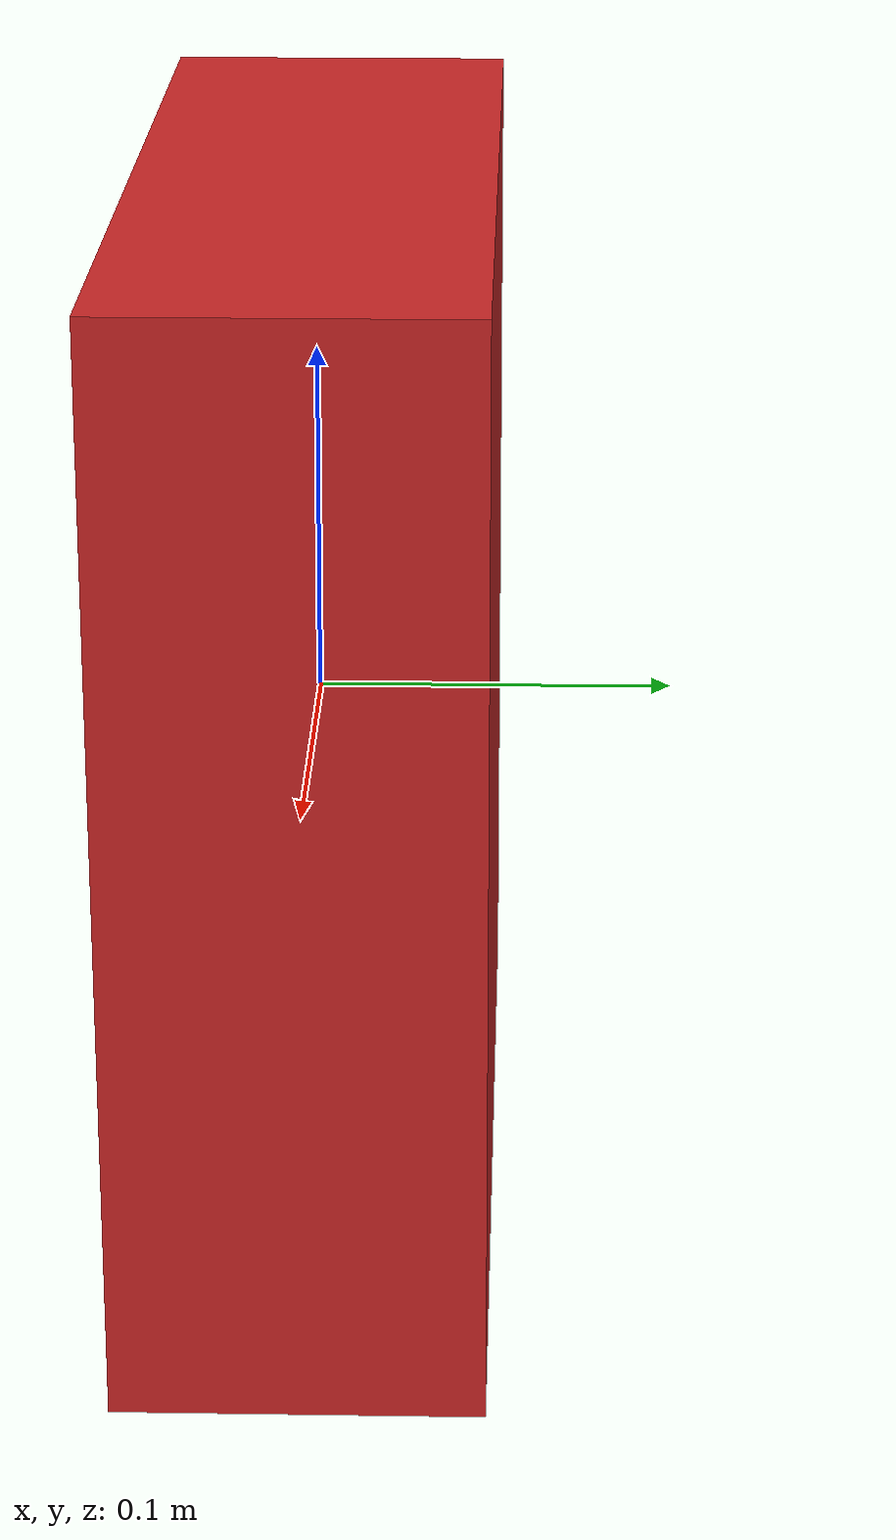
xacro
<?xml version="1.0"?>
<robot name="block"  xmlns:xacro="http://www.ros.org/wiki/xacro">
 <xacro:include filename="$(find m2wr_description)/urdf/materials.xacro" />
  <link name = "rblock">
  <collision>
   <origin xyz="0 0 0" rpy="0 0 0"/>
   <geometry>
	<box size="0.3 0.1 0.3"/>
   </geometry>
  </collision>
  <visual>
      <origin xyz="0 0 0" rpy="0 0 0"/>
      <geometry>
  	<box size="0.3 0.1 0.3"/>
      </geometry>
   </visual>

   <inertial>
      <mass value="1e-5" />
      <origin xyz="0 0 0" rpy="0 0 0"/>
      <inertia ixx="1e-6" ixy="0" ixz="0" iyy="1e-6" iyz="0" izz="1e-6" />
   </inertial>
  </link>
  <gazebo reference = "rblock">
   <material>Gazebo/Red</material>
  </gazebo>
</robot>

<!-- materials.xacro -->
<robot>
  <material name="black">
    <color rgba="0.0 0.0 0.0 1.0"/>
  </material>
  <material name="blue">
    <color rgba="0.203125 0.23828125 0.28515625 1.0"/>
  </material>
  <material name="green">
    <color rgba="0.0 0.8 0.0 1.0"/>
  </material>
  <material name="grey">
    <color rgba="0.2 0.2 0.2 1.0"/>
  </material>
  <material name="orange">
    <color rgba="1.0 0.423529411765 0.0392156862745 1.0"/>
  </material>
  <material name="brown">
    <color rgba="0.870588235294 0.811764705882 0.764705882353 1.0"/>
  </material>
  <material name="red">
    <color rgba="0.80078125 0.12890625 0.1328125 1.0"/>
  </material>
  <material name="white">
    <color rgba="1.0 1.0 1.0 1.0"/>
  </material>
</robot>
